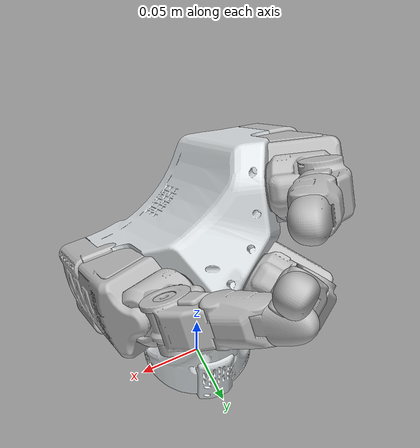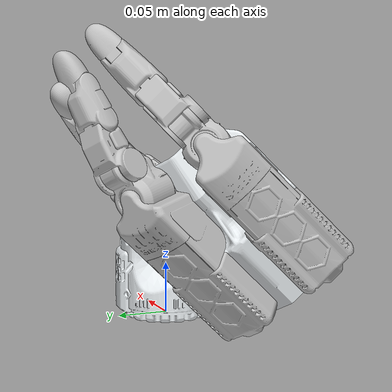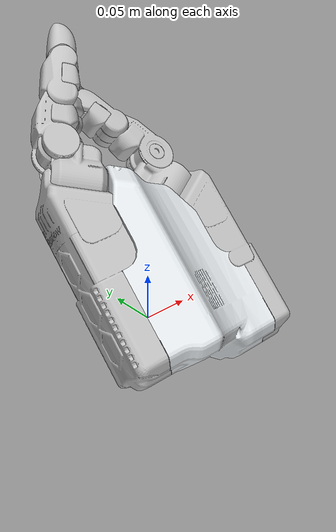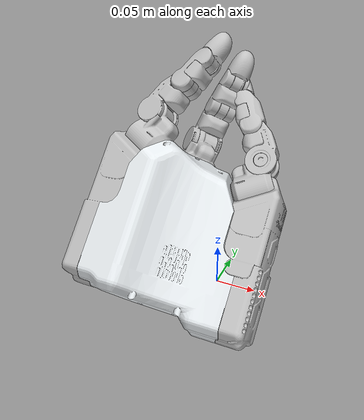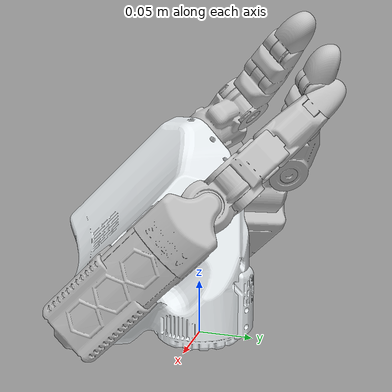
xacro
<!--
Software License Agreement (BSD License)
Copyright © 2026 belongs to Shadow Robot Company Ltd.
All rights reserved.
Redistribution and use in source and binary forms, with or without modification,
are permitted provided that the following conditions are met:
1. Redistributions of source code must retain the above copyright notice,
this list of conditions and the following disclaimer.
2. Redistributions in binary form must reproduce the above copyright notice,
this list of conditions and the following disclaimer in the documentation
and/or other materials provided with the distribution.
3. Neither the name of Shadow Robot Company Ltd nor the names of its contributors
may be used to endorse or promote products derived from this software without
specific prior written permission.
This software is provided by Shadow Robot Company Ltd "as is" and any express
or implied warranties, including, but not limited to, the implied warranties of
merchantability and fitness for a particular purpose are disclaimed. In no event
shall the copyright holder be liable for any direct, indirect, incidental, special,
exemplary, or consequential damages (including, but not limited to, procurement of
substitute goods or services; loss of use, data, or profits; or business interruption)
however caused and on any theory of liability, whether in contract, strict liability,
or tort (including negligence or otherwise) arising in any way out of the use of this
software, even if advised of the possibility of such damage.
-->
<?xml version="1.0" encoding="utf-8"?>

<robot name="dexee_config_2_right_hand" xmlns:xacro="http://www.ros.org/wiki/xacro">
  <xacro:include filename="$(find dx_description)/robot/0x02000107.xacro" />
  <xacro:arg name="prefix" default="" />
  <xacro:arg name="distal_type" default="magtac" />  <!-- "sparkle" or "magtac" -->
  <link name="world" />
  <joint name="$(arg prefix)world_joint" type="fixed">
    <parent link="world" />
    <child link="$(arg prefix)hand_base" />
  </joint>
  <xacro:dexee_config_2_right_hand prefix="$(arg prefix)" distal_type="$(arg distal_type)"/>
  <gazebo>
    <plugin name="gazebo_ros_control" filename="libgazebo_ros_control.so">
    </plugin>
  </gazebo>
</robot>

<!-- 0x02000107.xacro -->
<robot name="dexee_config_2_right_hand" xmlns:xacro="http://ros.org/wiki/xacro">
  <xacro:macro name="dexee_config_2_right_hand" params="prefix:=^ distal_type:=^">
    <link name="${prefix}hand_base">
      <inertial>
        <origin xyz="-0.0127919094737466 -0.0312883650011838 0.0461427138469727" rpy="0 0 0" />
        <mass value="0.53506724" />
        <inertia ixx="0.00305236880030627" ixy="-0.000645365794724863" ixz="0.000224124508980908"
                 iyy="0.0014694217541267" iyz="-7.32021893591101E-05" izz="0.0034259891925215" />
      </inertial>
      <visual>
        <origin xyz="0 0 0" rpy="0 0 0" />
        <geometry>
          <mesh filename="package://dx_description/meshes/hand_bases/Config_2_Right_Hand_Base.dae" />
        </geometry>
        <material name="">
          <color rgba="0.898039215686275 0.917647058823529 0.929411764705882 1" />
        </material>
      </visual>
      <collision>
        <origin xyz="0 0 0" rpy="0 0 0" />
        <geometry>
          <mesh filename="package://dx_description/meshes/hand_bases/collision/Config_2_Right_Hand_Base.stl" />
        </geometry>
      </collision>
    </link>
    <gazebo reference="${prefix}hand_base">
      <selfCollide>true</selfCollide>
    </gazebo>

    <!-- Create a virtual end effector link that will be useful for arm IK -->
    <link name="${prefix}end_effector"/>
    <joint name="${prefix}ee_fixed_joint" type="fixed">
      <parent link="${prefix}hand_base"/>
      <child link="${prefix}end_effector"/>
      <origin rpy="0.0 0.0 0.0" xyz="0.0 0.0 0.25"/>
    </joint>

    <xacro:include filename="$(find dx_description)/xacros/dx_e3r3_finger.xacro" />
    <xacro:macro_e3r3_finger prefix="${prefix}" finger_id="F0" parent="${prefix}hand_base">
      <origin xyz="-0.0882673027707308 -0.12823624685039 0.0575255687317363" rpy="-1.74273004  0.77031903  1.32641633"/>
    </xacro:macro_e3r3_finger>
    <xacro:macro_e3r3_finger prefix="${prefix}" finger_id="F1" parent="${prefix}hand_base">
      <origin xyz="-0.0495780670511493 -0.0794348993309076 0.00872422121225322" rpy="-2.22448705  0.47183267  0.5355029"/>
    </xacro:macro_e3r3_finger>
    <xacro:macro_e3r3_finger prefix="${prefix}" finger_id="F2" parent="${prefix}hand_base">
      <origin xyz="0.0375495099984522 -0.105081515549682 0.00891499330831236" rpy="-1.57079633 -0.78539816 -1.57079633"/>
    </xacro:macro_e3r3_finger>
  </xacro:macro>
</robot>

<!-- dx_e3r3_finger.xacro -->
<robot xmlns:xacro="http://ros.org/wiki/xacro">
  <xacro:macro name="macro_e3r3_finger" params="prefix:=^ distal_type:=^ finger_id parent *origin">
    <joint name="${prefix}world_joint_${finger_id}" type="fixed">
      <xacro:insert_block name="origin"/>
      <parent link="${parent}" />
      <child link="${prefix}${finger_id}_base" />
    </joint>
    <link name="${prefix}${finger_id}_base">
      <inertial>
        <origin rpy="1.5707 0 0" xyz="-1.30462232073506e-05 -0.0890545424979884 0.00045858190188918893 "/>
        <mass value="0.89937782"/>
        <inertia ixx="0.0024900529476665615" ixy="-1.0049950074763391e-07" ixz="-2.1821824210422672e-07" iyy="0.0022936902305646604" iyz="1.8955596520453447e-06" izz="0.0006773493311454545"/>
      </inertial>
      <visual>
        <origin xyz="0 0 0" rpy="1.5707 0 0" />
        <geometry>
          <mesh filename="package://dx_description/meshes/dx_e3r3_finger/F0_base.dae" />
        </geometry>
        <material name="">
          <color rgba="0.75294 0.75294 0.75294 1" />
        </material>
      </visual>
      <collision>
        <origin xyz="0 0 0" rpy="1.5707 0 0" />
        <geometry>
          <mesh filename="package://dx_description/meshes/dx_e3r3_finger/collision/F0_base.stl" />
        </geometry>
      </collision>
    </link>
    <gazebo reference="${prefix}${finger_id}_base">
      <selfCollide>true</selfCollide>
    </gazebo>
    <link name="${prefix}${finger_id}_J0_link">
      <inertial>
        <origin xyz="-0.0002171478112126603 0.062391354 0.009831462605538131"/>
        <mass value="0.13077995"/>
        <inertia ixx="6.637052873451466e-05" ixy="3.159178456487345e-08" ixz="5.047967765250655e-07" iyy="5.309491755924392e-05" iyz="-9.40024171556021e-06" izz="4.638346622651747e-05"/>
      </inertial>
      <visual>
        <origin xyz="0 0.077 0" rpy="0 0 0" />
        <geometry>
            <mesh filename="package://dx_description/meshes/dx_e3r3_finger/F0_J0_link.dae" />
        </geometry>
        <material name="">
          <color rgba="0.75294 0.75294 0.75294 1" />
        </material>
      </visual>
      <collision>
        <origin xyz="0 0.077 0" rpy="0 0 0" />
        <geometry>
            <mesh filename="package://dx_description/meshes/dx_e3r3_finger/collision/F0_J0_link.stl" />
        </geometry>
      </collision>
    </link>
    <gazebo reference="${prefix}${finger_id}_J0_link">
      <selfCollide>true</selfCollide>
    </gazebo>
    <joint name="${prefix}${finger_id}_J0" type="revolute">
      <origin xyz="0 -0.14073 -0.051327" rpy="2.0944 0 0" />
      <parent link="${prefix}${finger_id}_base" />
      <child link="${prefix}${finger_id}_J0_link" />
      <axis xyz="0 -1 0" />
      <limit lower="-0.8727" upper="0.8727" effort="1.5" velocity="3.1415" />
      <dynamics friction="0.001"/>
    </joint>
    <link name="${prefix}${finger_id}_proximal">
      <inertial>
        <origin xyz="-0.00020256 0.0024322 0.02375091" rpy="0 0 0" />
        <mass value="0.09614332" />
        <inertia ixx="0.00004332" ixy="-0.00000017" ixz="-0.00000349" iyy="0.00004756" iyz="0.00000055"
                 izz="0.00002008" />
      </inertial>
      <visual>
        <origin xyz="0 0 0" rpy="0 0 0" />
        <geometry>
            <mesh filename="package://dx_description/meshes/dx_e3r3_finger/F0_proximal.dae" />
        </geometry>
        <material name="">
          <color rgba="0.75294 0.75294 0.75294 1" />
        </material>
      </visual>
      <collision>
        <origin xyz="0 0 0" rpy="0 0 0" />
        <geometry>
          <mesh filename="package://dx_description/meshes/dx_e3r3_finger/collision/F0_proximal.stl" />
        </geometry>
      </collision>
    </link>
    <gazebo reference="${prefix}${finger_id}_proximal">
      <selfCollide>true</selfCollide>
    </gazebo>
    <joint name="${prefix}${finger_id}_J1" type="revolute">
      <origin xyz="0 0.0765883365730207 0.0299999999999999" rpy="0 0 0" />
      <parent link="${prefix}${finger_id}_J0_link" />
      <child link="${prefix}${finger_id}_proximal" />
      <axis xyz="1 0 0" />
      <limit lower="-1.396" upper="0.785" effort="1.2" velocity="3.1415" />
      <dynamics friction="0.001"/>
    </joint>
    <link name="${prefix}${finger_id}_middle">
      <inertial>
        <origin xyz="-0.00026744 -0.00004338 0.01669764" rpy="0 0 0" />
        <mass value="0.05585897" />
        <inertia ixx="0.00001447" ixy="-0.00000005" ixz="-0.00000004" iyy="0.00001686" iyz="-0.00000007"
                 izz="0.00000973" />
      </inertial>
      <visual>
        <origin xyz="0 0 0" rpy="0 0 0" />
        <geometry>
            <mesh filename="package://dx_description/meshes/dx_e3r3_finger/F0_middle.dae" />
        </geometry>
        <material name="">
          <color rgba="0.75294 0.75294 0.75294 1" />
        </material>
      </visual>
      <collision>
        <origin xyz="0 0 0" rpy="0 0 0" />
        <geometry>
          <mesh filename="package://dx_description/meshes/dx_e3r3_finger/collision/F0_middle.stl" />
        </geometry>
      </collision>
    </link>
    <gazebo reference="${prefix}${finger_id}_middle">
      <selfCollide>true</selfCollide>
    </gazebo>
    <joint name="${prefix}${finger_id}_J2" type="revolute">
      <origin xyz="0 0 0.05" rpy="0 0 0" />
      <parent link="${prefix}${finger_id}_proximal" />
      <child link="${prefix}${finger_id}_middle" />
      <axis xyz="1 0 0" />
      <limit lower="0" upper="1.396" effort="0.7" velocity="3.1415" />
      <dynamics friction="0.001"/>
    </joint>
    <xacro:include filename="$(find dx_description)/xacros/distals/${distal_type}.xacro" />
    <xacro:macro_e3r3_distal parent="${prefix}${finger_id}_middle"/>
    <!-- These transmissions are wrongly configured and fail to be loaded by the real robot -->
    <!-- We still need to define them in order to be able to launch the robot in simulation -->
    <transmission name="trans_${prefix}${finger_id}_J0">
      <type>UnusedTransmission</type>
      <joint name="${prefix}${finger_id}_J0">
        <hardwareInterface>hardware_interface/EffortJointInterface</hardwareInterface>
      </joint>
      <actuator name="${prefix}${finger_id}_J0_motor">
        <mechanicalReduction>1</mechanicalReduction>
      </actuator>
    </transmission>
    <transmission name="trans_${prefix}${finger_id}_J1">
      <type>UnusedTransmission</type>
      <joint name="${prefix}${finger_id}_J1">
        <hardwareInterface>hardware_interface/EffortJointInterface</hardwareInterface>
      </joint>
      <actuator name="${prefix}${finger_id}_J1_motor">
        <mechanicalReduction>1</mechanicalReduction>
      </actuator>
    </transmission>
    <transmission name="trans_${prefix}${finger_id}_J2">
      <type>UnusedTransmission</type>
      <joint name="${prefix}${finger_id}_J2">
        <hardwareInterface>hardware_interface/EffortJointInterface</hardwareInterface>
      </joint>
      <actuator name="${prefix}${finger_id}_J2_motor">
        <mechanicalReduction>1</mechanicalReduction>
      </actuator>
    </transmission>
    <transmission name="trans_${prefix}${finger_id}_J3">
      <type>UnusedTransmission</type>
      <joint name="${prefix}${finger_id}_J3">
        <hardwareInterface>hardware_interface/EffortJointInterface</hardwareInterface>
      </joint>
      <actuator name="${prefix}${finger_id}_J3_motor">
        <mechanicalReduction>1</mechanicalReduction>
      </actuator>
    </transmission>
  </xacro:macro>
</robot>

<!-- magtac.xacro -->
<robot xmlns:xacro="http://ros.org/wiki/xacro">
  <xacro:macro name="macro_e3r3_distal" params="prefix:=^ finger_id:=^ parent">
    <link name="${prefix}${finger_id}_distal">
      <inertial>
        <origin xyz="0.00084325 0.00164346 0.01482169" rpy="0 0 0" />
        <mass value="0.02766365" />
        <inertia ixx="0.0000051" ixy="0" ixz="0.00000028" iyy="0.00000506" iyz="-0.00000034" izz="0.00000198" />
      </inertial>
      <visual>
        <origin xyz="0 0 0" rpy="-1.57079633 0 0" />
        <geometry>
            <mesh filename="package://dx_description/meshes/distals/magtac.dae" />
        </geometry>
        <material name="">
          <color rgba="0.75294 0.75294 0.75294 1" />
        </material>
      </visual>
      <collision>
        <origin xyz="0 0 0" rpy="-1.57079633 0 0" />
        <geometry>
          <mesh filename="package://dx_description/meshes/distals/collision/magtac.stl" />
        </geometry>
      </collision>
    </link>
    <gazebo reference="${prefix}${finger_id}_distal">
      <selfCollide>true</selfCollide>
    </gazebo>
    <joint name="${prefix}${finger_id}_J3" type="revolute">
      <origin xyz="0 0 0.035" rpy="0 0 0" />
      <parent link="${parent}" />
      <child link="${prefix}${finger_id}_distal" />
      <axis xyz="1 0 0" />
      <limit lower="-0.523" upper="1.485" effort="0.35" velocity="3.1415" />
      <dynamics friction="0.001"/>
    </joint>
    <link name="${prefix}${finger_id}_tip" />
    <joint name="${prefix}${finger_id}_distal_tip" type="fixed">
        <parent link="${prefix}${finger_id}_distal" />
        <child link="${prefix}${finger_id}_tip" />
        <origin xyz="0 0.003 0.033" rpy="0 0 0" />
    </joint>
  </xacro:macro>
</robot>
